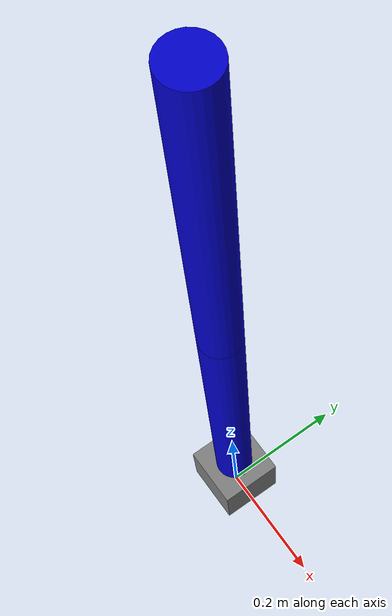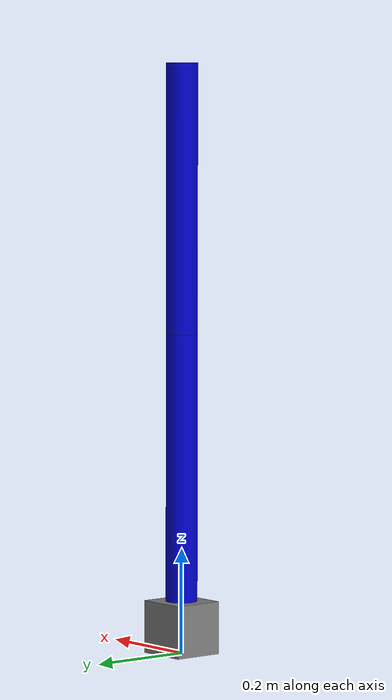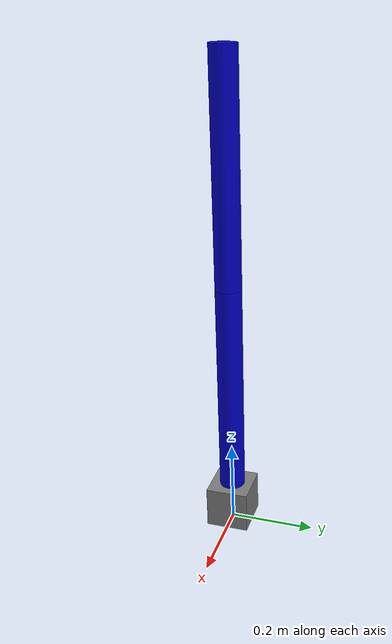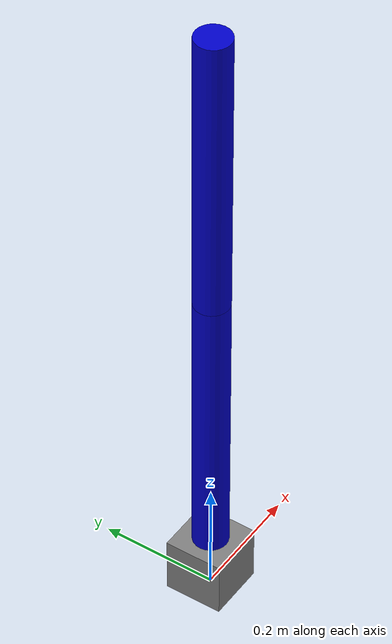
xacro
<?xml version="1.0"?>
<robot name="sliding_arm">

  <material name="blue"><color rgba="0 0 0.8 1"/></material>
  <material name="grey"><color rgba="0.5 0.5 0.5 1"/></material>

  <link name="world"/>

  <link name="base_link">
    <inertial>
      <mass value="0.1"/>
      <inertia ixx="0.0001" ixy="0" ixz="0" iyy="0.0001" iyz="0" izz="0.0001"/>
    </inertial>
  </link>

  <joint name="world_fixed" type="fixed">
    <parent link="world"/>
    <child link="base_link"/>
  </joint>

  <joint name="base_sliding_joint" type="prismatic">
    <parent link="base_link"/>
    <child link="slider_link"/>
    <origin xyz="0 0 0.05" rpy="0 0 0"/>
    <axis xyz="0 1 0"/>
    <limit effort="100" lower="-0.127" upper="0.127" velocity="1.0"/>
    <dynamics damping="0.7" friction="0.1"/>
  </joint>

  <link name="slider_link">
    <inertial>
      <mass value="1.0"/>
      <inertia ixx="0.001" ixy="0" ixz="0" iyy="0.001" iyz="0" izz="0.001"/>
    </inertial>
    <collision>
      <geometry><box size="0.1 0.1 0.1"/></geometry>
    </collision>
    <visual>
      <geometry><box size="0.1 0.1 0.1"/></geometry>
      <material name="grey"/>
    </visual>
  </link>

  <joint name="shoulder_joint" type="revolute">
    <parent link="slider_link"/>
    <child link="arm_link_1"/>
    <origin xyz="0 0 0.05" rpy="0 0 0"/>
    <axis xyz="0 1 0"/>
    <limit effort="100" lower="-3.14" upper="3.14" velocity="1.0"/>
  </joint>

  <link name="arm_link_1">
    <inertial>
      <origin xyz="0 0 0.254"/>
      <mass value="2.0"/>
      <inertia ixx="0.043" ixy="0" ixz="0" iyy="0.043" iyz="0" izz="0.001"/>
    </inertial>
    <collision>
      <origin xyz="0 0 0.254"/>
      <geometry><cylinder length="0.508" radius="0.03"/></geometry>
    </collision>
    <visual>
      <origin xyz="0 0 0.254"/>
      <geometry><cylinder length="0.508" radius="0.03"/></geometry>
      <material name="blue"/>
    </visual>
  </link>

  <joint name="elbow_joint" type="revolute">
    <parent link="arm_link_1"/>
    <child link="arm_link_2"/>
    <origin xyz="0 0 0.508" rpy="0 0 0"/>
    <axis xyz="0 1 0"/>
    <limit effort="100" lower="-2.5" upper="2.5" velocity="1.0"/>
  </joint>

  <link name="arm_link_2">
    <inertial>
      <origin xyz="0 0 0.254"/>
      <mass value="2.0"/>
      <inertia ixx="0.043" ixy="0" ixz="0" iyy="0.043" iyz="0" izz="0.001"/>
    </inertial>
    <collision>
      <origin xyz="0 0 0.254"/>
      <geometry><cylinder length="0.508" radius="0.03"/></geometry>
    </collision>
    <visual>
      <origin xyz="0 0 0.254"/>
      <geometry><cylinder length="0.508" radius="0.03"/></geometry>
      <material name="blue"/>
    </visual>
  </link>

  <ros2_control name="GazeboSimSystem" type="system">
    <hardware>
      <plugin>gz_ros2_control/GazeboSimSystem</plugin>
    </hardware>
    <joint name="base_sliding_joint">
      <command_interface name="position"/>
      <state_interface name="position"/>
      <state_interface name="velocity"/>
    </joint>
    <joint name="shoulder_joint">
      <command_interface name="position"/>
      <state_interface name="position"/>
      <state_interface name="velocity"/>
    </joint>
    <joint name="elbow_joint">
      <command_interface name="position"/>
      <state_interface name="position"/>
      <state_interface name="velocity"/>
    </joint>
  </ros2_control>

  <gazebo>
    <plugin filename="libgz_ros2_control-system.so" name="gz_ros2_control::GazeboSimROS2ControlPlugin">
      <parameters>$(find arm_description)/config/arm_controllers.yaml</parameters>
    </plugin>
  </gazebo>

</robot>
